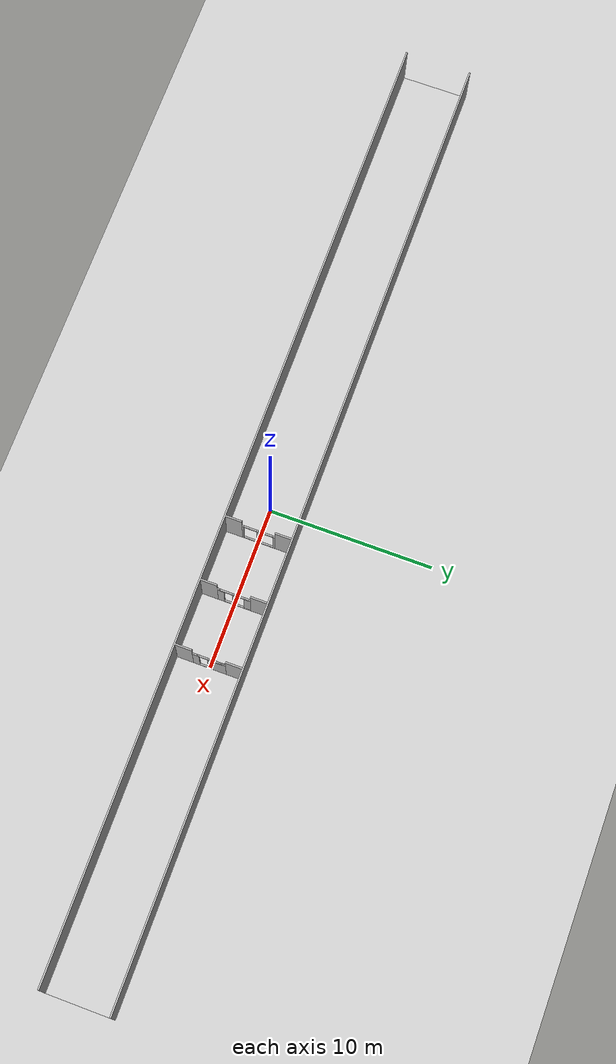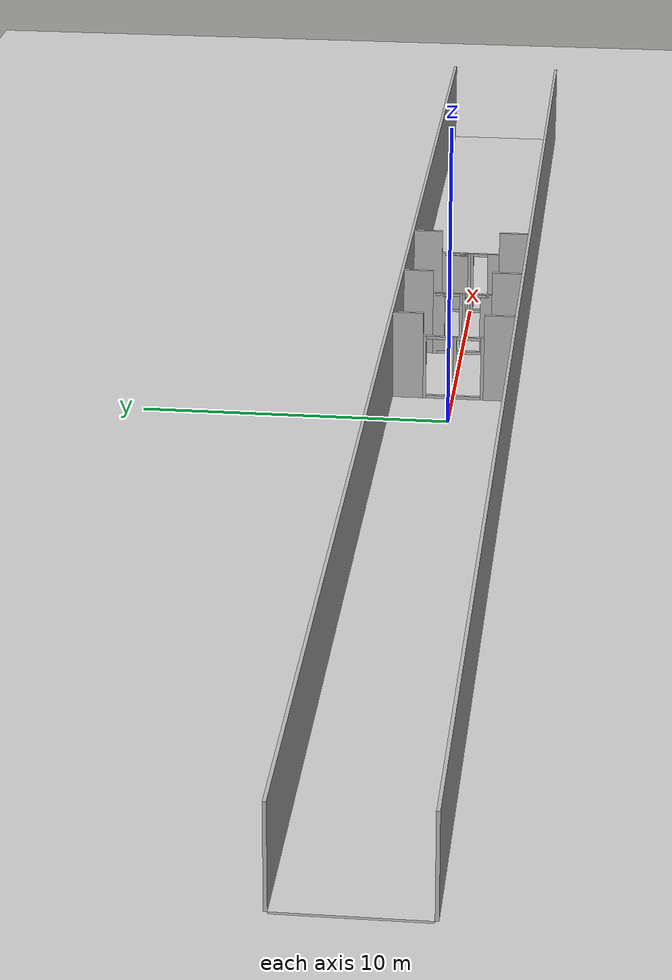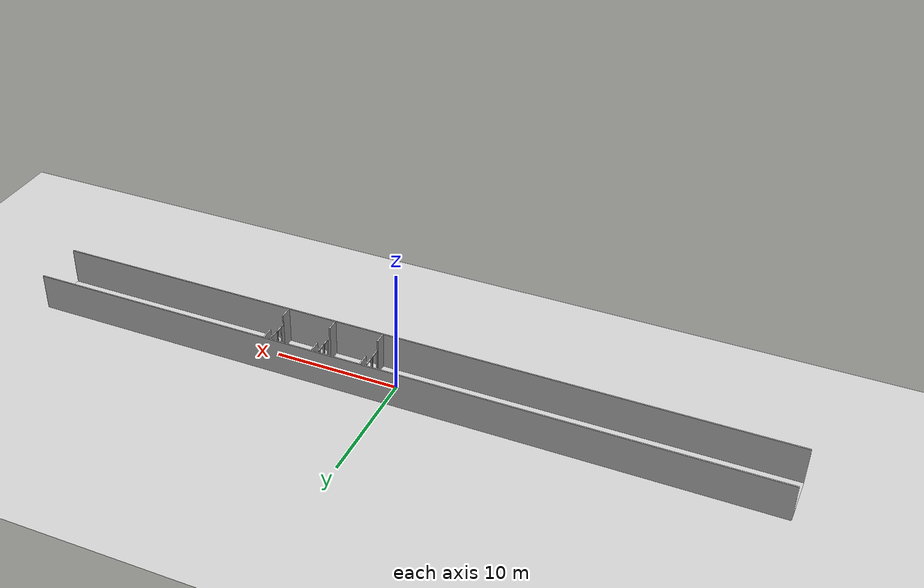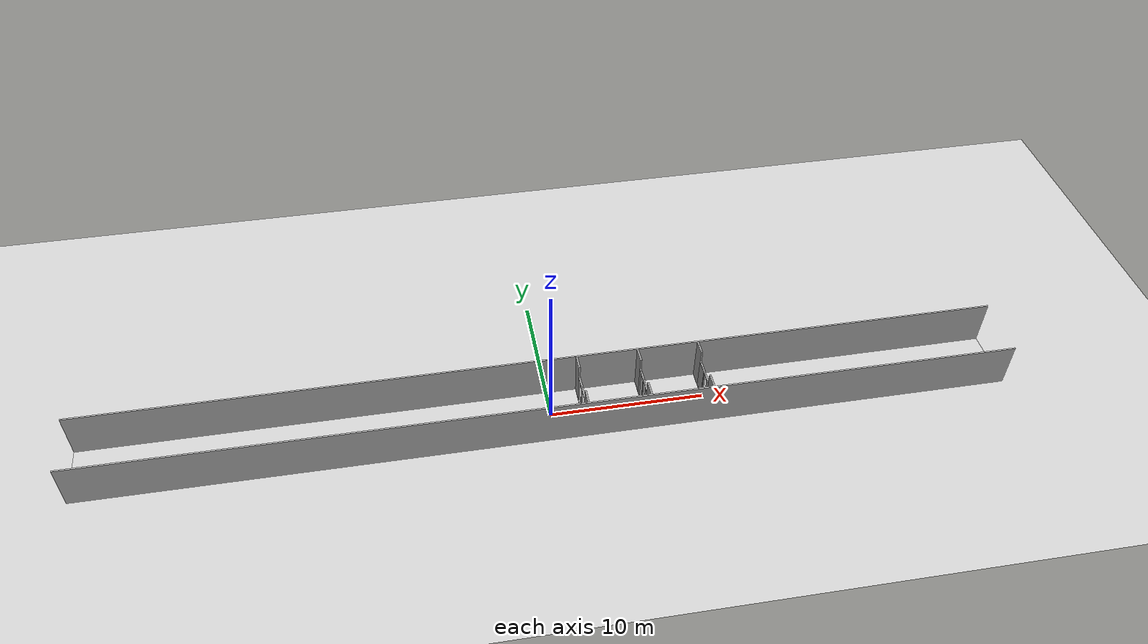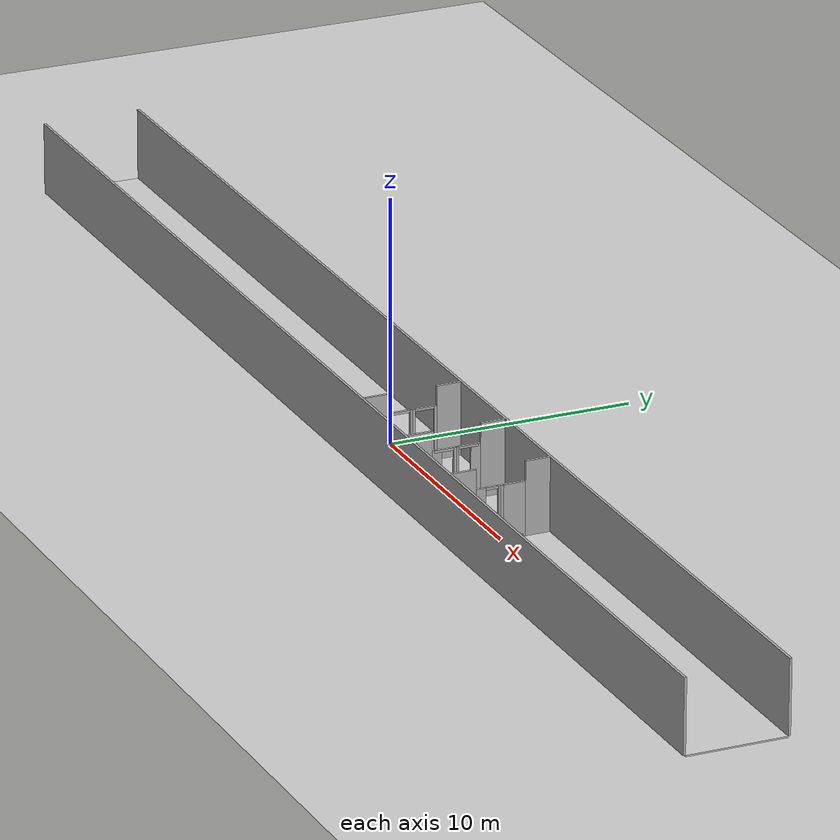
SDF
<sdf version="1.6">
  <!-- Long parallel walls create repeated vertical edges on purpose; the scene
       exercises the detector's plane-range and frame-pair rejection logic. -->
  <world name="university_corridor">

    <include><uri>model://sun</uri></include>
    <include><uri>model://ground_plane</uri></include>

    <!-- FLOOR -->
    <model name="floor">
      <static>true</static>
      <link name="floor">
        <pose>0 0 -0.05 0 0 0</pose>
        <collision name="collision">
          <geometry>
            <box><size>60 4.2 0.1</size></box>
          </geometry>
        </collision>
        <visual name="visual">
          <geometry>
            <box><size>60 4 0.1</size></box>
          </geometry>
          <material>
            <ambient>0.8 0.8 0.8 1</ambient>
          </material>
        </visual>
      </link>
    </model>

    <!-- LEFT WALL -->
    <model name="left_main_wall">
      <static>true</static>
      <link name="wall">
        <pose>0 2.05 1.5 0 0 0</pose>
        <collision name="collision">
          <geometry>
            <box><size>60 0.1 3</size></box>
          </geometry>
        </collision>
        <visual name="visual">
          <geometry>
            <box><size>60 0.1 3</size></box>
          </geometry>
        </visual>
      </link>
    </model>

    <!-- RIGHT WALL -->
    <model name="right_main_wall">
      <static>true</static>
      <link name="wall">
        <pose>0 -2.05 1.5 0 0 0</pose>
        <collision name="collision">
          <geometry>
            <box><size>60 0.1 3</size></box>
          </geometry>
        </collision>
        <visual name="visual">
          <geometry>
            <box><size>60 0.1 3</size></box>
          </geometry>
        </visual>
      </link>
    </model>

    <!-- Doors at several X positions provide successive traversal scenarios in
         the same corridor without rebuilding the world. -->
    <!-- WALL WITH HINGED FRAMED DOOR -->
    <model name="wall_with_door">
      <static>false</static>

      <!-- Wall location in world -->
      <pose>2 0 0 0 0 0</pose>

      <!-- ================= SOLID WALL PARTS ================= -->

      <link name="wall_left">
        <pose>0 1.5 1.5 0 0 0</pose>
        <collision name="c">
          <geometry><box><size>0.1 1.0 3.0</size></box></geometry>
        </collision>
        <visual name="v">
          <geometry><box><size>0.1 1.0 3.0</size></box></geometry>
        </visual>
      </link>

      <link name="wall_right">
        <pose>0 -1.5 1.5 0 0 0</pose>
        <collision name="c">
          <geometry><box><size>0.1 1.0 3.0</size></box></geometry>
        </collision>
        <visual name="v">
          <geometry><box><size>0.1 1.0 3.0</size></box></geometry>
        </visual>
      </link>

      <!-- ================= DOOR REFERENCE LINK ================= -->
      <!-- Physical anchor of the door assembly -->
      <link name="door_ref"/>

      <!-- ================= FIXED DOOR FRAME ================= -->

      <link name="fixed_vertical_hinge">
        <pose>0 0.95 1.1 0 0 0</pose>
        <collision name="c">
          <geometry><box><size>0.1 0.1 2.2</size></box></geometry>
        </collision>
        <visual name="v">
          <geometry><box><size>0.1 0.1 2.2</size></box></geometry>
        </visual>
      </link>

      <link name="fixed_vertical_free">
        <pose>0 0.05 1.1 0 0 0</pose>
        <collision name="c">
          <geometry><box><size>0.1 0.1 2.2</size></box></geometry>
        </collision>
        <visual name="v">
          <geometry><box><size>0.1 0.1 2.2</size></box></geometry>
        </visual>
      </link>

      <link name="fixed_bottom">
        <pose>0 0.5 0.05 0 0 0</pose>
        <collision name="c">
          <geometry><box><size>0.1 0.8 0.1</size></box></geometry>
        </collision>
        <visual name="v">
          <geometry><box><size>0.1 0.8 0.1</size></box></geometry>
        </visual>
      </link>

      <link name="fixed_top">
        <pose>0 0.5 2.15 0 0 0</pose>
        <collision name="c">
          <geometry><box><size>0.1 0.8 0.1</size></box></geometry>
        </collision>
        <visual name="v">
          <geometry><box><size>0.1 0.8 0.1</size></box></geometry>
        </visual>
      </link>

      <!-- weld fixed frame to door_ref -->
      <joint name="door_ref_to_fixed" type="fixed">
        <parent>door_ref</parent>
        <child>fixed_vertical_hinge</child>
      </joint>

      <joint name="fixed_free_weld" type="fixed">
        <parent>fixed_vertical_hinge</parent>
        <child>fixed_vertical_free</child>
      </joint>

      <joint name="fixed_top_weld" type="fixed">
        <parent>fixed_vertical_hinge</parent>
        <child>fixed_top</child>
      </joint>

      <joint name="fixed_bottom_weld" type="fixed">
        <parent>fixed_vertical_hinge</parent>
        <child>fixed_bottom</child>
      </joint>

      <!-- ================= MOVABLE DOOR FRAME ================= -->

      <link name="moving_vertical_hinge">
        <pose>0 -0.95 1.1 0 0 0</pose>
        <collision name="c">
          <geometry><box><size>0.1 0.1 2.2</size></box></geometry>
        </collision>
        <visual name="v">
          <geometry><box><size>0.1 0.1 2.2</size></box></geometry>
        </visual>
      </link>

      <link name="moving_vertical_free">
        <pose>0 -0.05 1.1 0 0 0</pose>
        <collision name="c">
          <geometry><box><size>0.1 0.1 2.2</size></box></geometry>
        </collision>
        <visual name="v">
          <geometry><box><size>0.1 0.1 2.2</size></box></geometry>
        </visual>
      </link>

      <link name="moving_bottom">
        <pose>0 -0.5 0.05 0 0 0</pose>
        <collision name="c">
          <geometry><box><size>0.1 0.8 0.1</size></box></geometry>
        </collision>
        <visual name="v">
          <geometry><box><size>0.1 0.8 0.1</size></box></geometry>
        </visual>
      </link>

      <link name="moving_top">
        <pose>0 -0.5 2.15 0 0 0</pose>
        <collision name="c">
          <geometry><box><size>0.1 0.8 0.1</size></box></geometry>
        </collision>
        <visual name="v">
          <geometry><box><size>0.1 0.8 0.1</size></box></geometry>
        </visual>
      </link>

      <!-- weld movable frame -->
      <joint name="moving_free_weld" type="fixed">
        <parent>moving_vertical_hinge</parent>
        <child>moving_vertical_free</child>
      </joint>

      <joint name="moving_top_weld" type="fixed">
        <parent>moving_vertical_hinge</parent>
        <child>moving_top</child>
      </joint>

      <joint name="moving_bottom_weld" type="fixed">
        <parent>moving_vertical_hinge</parent>
        <child>moving_bottom</child>
      </joint>

      <!-- ================= wall to door structure ================= -->
      <joint name="wall_right_weld" type="fixed">
        <parent>wall_left</parent>
        <child>wall_right</child>
      </joint>

      <joint name="wall_to_door_ref" type="fixed">
        <parent>wall_left</parent>
        <child>door_ref</child>
      </joint>

      <!-- Fixed joints assemble each frame; only this revolute joint is allowed
           to move, with damping to prevent an unrealistic free swing. -->
      <!-- ================= HINGE ================= -->

      <joint name="door_hinge" type="revolute">
        <parent>fixed_vertical_hinge</parent>
        <child>moving_vertical_hinge</child>
        <axis>
          <xyz>0 0 1</xyz>
          <limit>
            <lower>-1.57</lower>  <!-- negative opens inward (away from a robot coming from -x), positive outward -->
            <upper>1.57</upper>
          </limit>
          <dynamics>
            <damping>0.5</damping>
          </dynamics>
        </axis>
      </joint>

    </model>

    <!-- SECOND WALL WITH HINGED FRAMED DOOR -->
    <model name="second_wall_with_door">
      <static>false</static>

      <!-- Wall location in world -->
      <pose>6 0 0 0 0 0</pose>

      <!-- ================= SOLID WALL PARTS ================= -->

      <link name="wall_left">
        <pose>0 1.5 1.5 0 0 0</pose>
        <collision name="c">
          <geometry><box><size>0.1 1.0 3.0</size></box></geometry>
        </collision>
        <visual name="v">
          <geometry><box><size>0.1 1.0 3.0</size></box></geometry>
        </visual>
      </link>

      <link name="wall_right">
        <pose>0 -1.5 1.5 0 0 0</pose>
        <collision name="c">
          <geometry><box><size>0.1 1.0 3.0</size></box></geometry>
        </collision>
        <visual name="v">
          <geometry><box><size>0.1 1.0 3.0</size></box></geometry>
        </visual>
      </link>

      <!-- ================= DOOR REFERENCE LINK ================= -->
      <!-- Physical anchor of the door assembly -->
      <link name="door_ref"/>

      <!-- ================= FIXED DOOR FRAME ================= -->

      <link name="fixed_vertical_hinge">
        <pose>0 0.8 1.1 0 0 0</pose>
        <collision name="c">
          <geometry><box><size>0.1 0.4 2.2</size></box></geometry>
        </collision>
        <visual name="v">
          <geometry><box><size>0.1 0.4 2.2</size></box></geometry>
        </visual>
      </link>

      <link name="fixed_vertical_free">
        <pose>0 0.05 1.1 0 0 0</pose>
        <collision name="c">
          <geometry><box><size>0.1 0.1 2.2</size></box></geometry>
        </collision>
        <visual name="v">
          <geometry><box><size>0.1 0.1 2.2</size></box></geometry>
        </visual>
      </link>

      <link name="fixed_bottom">
        <pose>0 0.5 0.05 0 0 0</pose>
        <collision name="c">
          <geometry><box><size>0.1 0.8 0.1</size></box></geometry>
        </collision>
        <visual name="v">
          <geometry><box><size>0.1 0.8 0.1</size></box></geometry>
        </visual>
      </link>

      <link name="fixed_top">
        <pose>0 0.5 2.15 0 0 0</pose>
        <collision name="c">
          <geometry><box><size>0.1 0.8 0.1</size></box></geometry>
        </collision>
        <visual name="v">
          <geometry><box><size>0.1 0.8 0.1</size></box></geometry>
        </visual>
      </link>

      <!-- weld fixed frame to door_ref -->
      <joint name="door_ref_to_fixed" type="fixed">
        <parent>door_ref</parent>
        <child>fixed_vertical_hinge</child>
      </joint>

      <joint name="fixed_free_weld" type="fixed">
        <parent>fixed_vertical_hinge</parent>
        <child>fixed_vertical_free</child>
      </joint>

      <joint name="fixed_top_weld" type="fixed">
        <parent>fixed_vertical_hinge</parent>
        <child>fixed_top</child>
      </joint>

      <joint name="fixed_bottom_weld" type="fixed">
        <parent>fixed_vertical_hinge</parent>
        <child>fixed_bottom</child>
      </joint>

      <!-- ================= MOVABLE DOOR FRAME ================= -->

      <link name="moving_vertical_hinge">
        <pose>0 -0.8 1.1 0 0 0</pose>
        <collision name="c">
          <geometry><box><size>0.1 0.4 2.2</size></box></geometry>
        </collision>
        <visual name="v">
          <geometry><box><size>0.1 0.4 2.2</size></box></geometry>
        </visual>
      </link>

      <link name="moving_vertical_free">
        <pose>0 -0.05 1.1 0 0 0</pose>
        <collision name="c">
          <geometry><box><size>0.1 0.1 2.2</size></box></geometry>
        </collision>
        <visual name="v">
          <geometry><box><size>0.1 0.1 2.2</size></box></geometry>
        </visual>
      </link>

      <link name="moving_bottom">
        <pose>0 -0.5 0.05 0 0 0</pose>
        <collision name="c">
          <geometry><box><size>0.1 0.8 0.1</size></box></geometry>
        </collision>
        <visual name="v">
          <geometry><box><size>0.1 0.8 0.1</size></box></geometry>
        </visual>
      </link>

      <link name="moving_top">
        <pose>0 -0.5 2.15 0 0 0</pose>
        <collision name="c">
          <geometry><box><size>0.1 0.8 0.1</size></box></geometry>
        </collision>
        <visual name="v">
          <geometry><box><size>0.1 0.8 0.1</size></box></geometry>
        </visual>
      </link>

      <!-- weld movable frame -->
      <joint name="moving_free_weld" type="fixed">
        <parent>moving_vertical_hinge</parent>
        <child>moving_vertical_free</child>
      </joint>

      <joint name="moving_top_weld" type="fixed">
        <parent>moving_vertical_hinge</parent>
        <child>moving_top</child>
      </joint>

      <joint name="moving_bottom_weld" type="fixed">
        <parent>moving_vertical_hinge</parent>
        <child>moving_bottom</child>
      </joint>

      <!-- ================= wall to door structure ================= -->
      <joint name="wall_right_weld" type="fixed">
        <parent>wall_left</parent>
        <child>wall_right</child>
      </joint>

      <joint name="wall_to_door_ref" type="fixed">
        <parent>wall_left</parent>
        <child>door_ref</child>
      </joint>

      <!-- ================= HINGE ================= -->

      <joint name="door_hinge" type="revolute">
        <parent>fixed_vertical_hinge</parent>
        <child>moving_vertical_hinge</child>
        <axis>
          <xyz>0 0 1</xyz>
          <limit>
            <lower>-1.57</lower>  <!-- negative opens inward (away from a robot coming from -x), positive outward -->
            <upper>1.57</upper>
          </limit>
          <dynamics>
            <damping>0.5</damping>
          </dynamics>
        </axis>
      </joint>

    </model>

    <!-- THIRD WALL WITH HINGED FRAMED DOOR -->
    <model name="third_wall_with_door">
      <static>false</static>

      <!-- Wall location in world -->
      <pose>10 0 0 0 0 0</pose>

      <!-- ================= SOLID WALL PARTS ================= -->

      <link name="wall_left">
        <pose>0 1.5 1.5 0 0 0</pose>
        <collision name="c">
          <geometry><box><size>0.1 1.0 3.0</size></box></geometry>
        </collision>
        <visual name="v">
          <geometry><box><size>0.1 1.0 3.0</size></box></geometry>
        </visual>
      </link>

      <link name="wall_right">
        <pose>0 -1.5 1.5 0 0 0</pose>
        <collision name="c">
          <geometry><box><size>0.1 1.0 3.0</size></box></geometry>
        </collision>
        <visual name="v">
          <geometry><box><size>0.1 1.0 3.0</size></box></geometry>
        </visual>
      </link>

      <!-- ================= DOOR REFERENCE LINK ================= -->
      <!-- Physical anchor of the door assembly -->
      <link name="door_ref"/>

      <!-- ================= FIXED DOOR FRAME ================= -->

      <link name="fixed_vertical_hinge">
        <pose>0 0.55 1.1 0 0 0</pose>
        <collision name="c">
          <geometry><box><size>0.1 0.9 2.2</size></box></geometry>
        </collision>
        <visual name="v">
          <geometry><box><size>0.1 0.9 2.2</size></box></geometry>
        </visual>
      </link>

      <link name="fixed_vertical_free">
        <pose>0 0.05 1.1 0 0 0</pose>
        <collision name="c">
          <geometry><box><size>0.1 0.1 2.2</size></box></geometry>
        </collision>
        <visual name="v">
          <geometry><box><size>0.1 0.1 2.2</size></box></geometry>
        </visual>
      </link>

      <link name="fixed_bottom">
        <pose>0 0.5 0.05 0 0 0</pose>
        <collision name="c">
          <geometry><box><size>0.1 0.8 0.1</size></box></geometry>
        </collision>
        <visual name="v">
          <geometry><box><size>0.1 0.8 0.1</size></box></geometry>
        </visual>
      </link>

      <link name="fixed_top">
        <pose>0 0.5 2.15 0 0 0</pose>
        <collision name="c">
          <geometry><box><size>0.1 0.8 0.1</size></box></geometry>
        </collision>
        <visual name="v">
          <geometry><box><size>0.1 0.8 0.1</size></box></geometry>
        </visual>
      </link>

      <!-- weld fixed frame to door_ref -->
      <joint name="door_ref_to_fixed" type="fixed">
        <parent>door_ref</parent>
        <child>fixed_vertical_hinge</child>
      </joint>

      <joint name="fixed_free_weld" type="fixed">
        <parent>fixed_vertical_hinge</parent>
        <child>fixed_vertical_free</child>
      </joint>

      <joint name="fixed_top_weld" type="fixed">
        <parent>fixed_vertical_hinge</parent>
        <child>fixed_top</child>
      </joint>

      <joint name="fixed_bottom_weld" type="fixed">
        <parent>fixed_vertical_hinge</parent>
        <child>fixed_bottom</child>
      </joint>

      <!-- ================= MOVABLE DOOR FRAME ================= -->

      <link name="moving_vertical_hinge">
        <pose>0 -0.8 1.1 0 0 0</pose>
        <collision name="c">
          <geometry><box><size>0.1 0.4 2.2</size></box></geometry>
        </collision>
        <visual name="v">
          <geometry><box><size>0.1 0.4 2.2</size></box></geometry>
        </visual>
      </link>

      <link name="moving_vertical_free">
        <pose>0 -0.05 1.1 0 0 0</pose>
        <collision name="c">
          <geometry><box><size>0.1 0.1 2.2</size></box></geometry>
        </collision>
        <visual name="v">
          <geometry><box><size>0.1 0.1 2.2</size></box></geometry>
        </visual>
      </link>

      <link name="moving_bottom">
        <pose>0 -0.5 0.05 0 0 0</pose>
        <collision name="c">
          <geometry><box><size>0.1 0.8 0.1</size></box></geometry>
        </collision>
        <visual name="v">
          <geometry><box><size>0.1 0.8 0.1</size></box></geometry>
        </visual>
      </link>

      <link name="moving_top">
        <pose>0 -0.5 2.15 0 0 0</pose>
        <collision name="c">
          <geometry><box><size>0.1 0.8 0.1</size></box></geometry>
        </collision>
        <visual name="v">
          <geometry><box><size>0.1 0.8 0.1</size></box></geometry>
        </visual>
      </link>

      <!-- weld movable frame -->
      <joint name="moving_free_weld" type="fixed">
        <parent>moving_vertical_hinge</parent>
        <child>moving_vertical_free</child>
      </joint>

      <joint name="moving_top_weld" type="fixed">
        <parent>moving_vertical_hinge</parent>
        <child>moving_top</child>
      </joint>

      <joint name="moving_bottom_weld" type="fixed">
        <parent>moving_vertical_hinge</parent>
        <child>moving_bottom</child>
      </joint>

      <!-- ================= wall to door structure ================= -->
      <joint name="wall_right_weld" type="fixed">
        <parent>wall_left</parent>
        <child>wall_right</child>
      </joint>

      <joint name="wall_to_door_ref" type="fixed">
        <parent>wall_left</parent>
        <child>door_ref</child>
      </joint>

      <!-- ================= HINGE ================= -->

      <joint name="door_hinge" type="revolute">
        <parent>fixed_vertical_hinge</parent>
        <child>moving_vertical_hinge</child>
        <axis>
          <xyz>0 0 1</xyz>
          <limit>
            <lower>-1.57</lower>  <!-- negative opens inward (away from a robot coming from -x), positive outward -->
            <upper>1.57</upper>
          </limit>
          <dynamics>
            <damping>0.5</damping>
          </dynamics>
        </axis>
      </joint>

    </model>

  </world>
</sdf>
